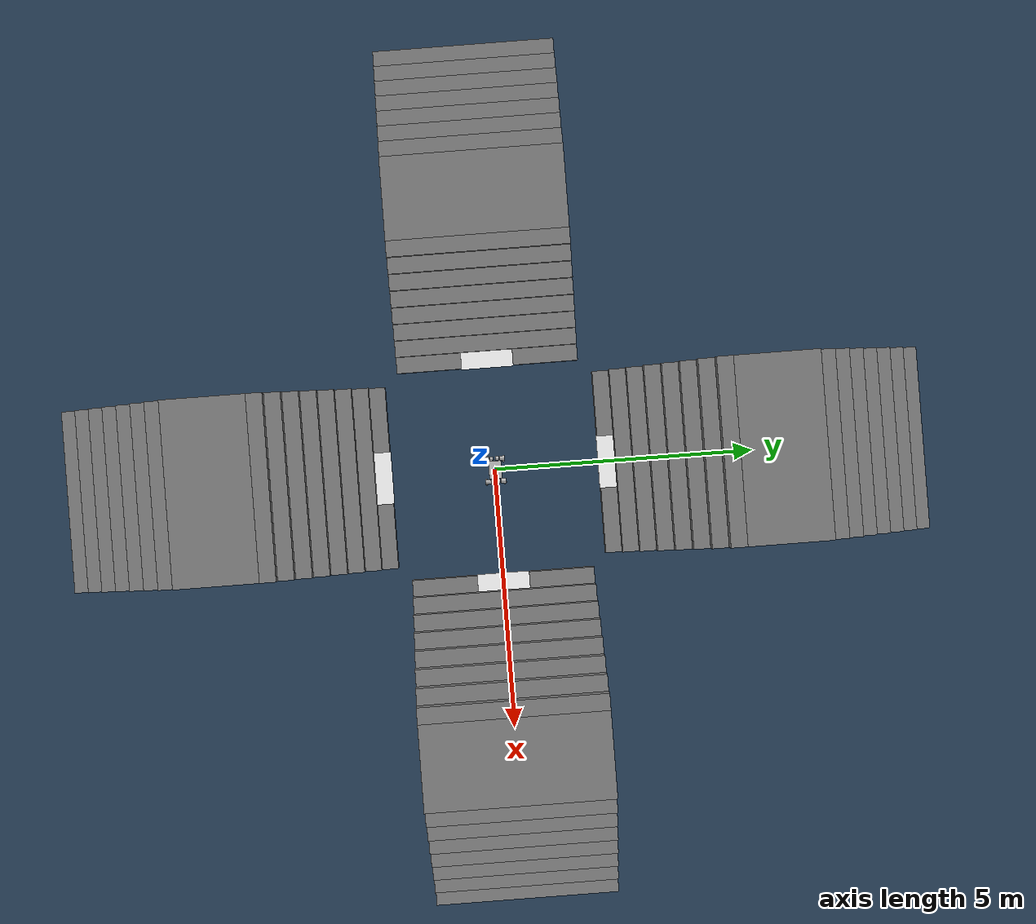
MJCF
<mujoco model="cross_stairs_1_4_7_10">
  <include file="z2.xml"/>
  <!-- Terrain Type: cross_stairs, Level: 1_4_7_10, Cross Layout: Center Gap 2.0m. Arch step height: 0.0800 Arch step height: 0.2000 Arch step height: 0.2300 Arch step height: 0.1700 -->
  <statistic center="0 0 0.1" extent="0.8" />
  <visual>
    <headlight diffuse="0.6 0.6 0.6" ambient="0.3 0.3 0.3" specular="0 0 0" />
    <rgba haze="0.15 0.25 0.35 1" />
    <global azimuth="-130" elevation="-20" />
  </visual>
  <asset>
    <texture type="skybox" builtin="gradient" rgb1="0.3 0.5 0.7" rgb2="0 0 0" width="512" height="3072" />
    <texture type="2d" name="groundplane" builtin="checker" mark="edge" rgb1="0.2 0.3 0.4" rgb2="0.1 0.2 0.3" markrgb="0.8 0.8 0.8" width="300" height="300" />
    <material name="groundplane" texture="groundplane" texuniform="true" texrepeat="5 5" reflectance="0.0" />
    <texture name="tex_label_1" type="2d" file="../imgs/label_1.png" />
    <material name="mat_label_1" texture="tex_label_1" specular="0" shininess="0" emission="1" texrepeat="1 -1" rgba="1 1 1 1" />
    <texture name="tex_label_7" type="2d" file="../imgs/label_7.png" />
    <material name="mat_label_7" texture="tex_label_7" specular="0" shininess="0" emission="1" texrepeat="1 -1" rgba="1 1 1 1" />
    <texture name="tex_label_10" type="2d" file="../imgs/label_10.png" />
    <material name="mat_label_10" texture="tex_label_10" specular="0" shininess="0" emission="1" texrepeat="1 -1" rgba="1 1 1 1" />
    <texture name="tex_label_4" type="2d" file="../imgs/label_4.png" />
    <material name="mat_label_4" texture="tex_label_4" specular="0" shininess="0" emission="1" texrepeat="1 -1" rgba="1 1 1 1" />
  </asset>
  <worldbody>
    <light pos="0 0 1.5" dir="0 0 -1" directional="true" />
    <geom name="floor" size="0 0 0.05" type="plane" material="groundplane" />
    <geom pos="-2.155 1.8982025386783976e-17 0.04" type="box" size="0.155 1.75 0.04" quat="6.123233995736766e-17 0.0 0.0 1.0" />
    <geom pos="-2.465 5.694607616035192e-17 0.12" type="box" size="0.155 1.75 0.04" quat="6.123233995736766e-17 0.0 0.0 1.0" />
    <geom pos="-2.775 9.491012693391986e-17 0.2" type="box" size="0.155 1.75 0.04" quat="6.123233995736766e-17 0.0 0.0 1.0" />
    <geom pos="-3.085 1.328741777074878e-16 0.28" type="box" size="0.155 1.75 0.04" quat="6.123233995736766e-17 0.0 0.0 1.0" />
    <geom pos="-3.395 1.7083822848105578e-16 0.36000000000000004" type="box" size="0.155 1.75 0.04" quat="6.123233995736766e-17 0.0 0.0 1.0" />
    <geom pos="-3.705 2.0880227925462374e-16 0.44000000000000006" type="box" size="0.155 1.75 0.04" quat="6.123233995736766e-17 0.0 0.0 1.0" />
    <geom pos="-4.015000000000001 2.467663300281917e-16 0.52" type="box" size="0.155 1.75 0.04" quat="6.123233995736766e-17 0.0 0.0 1.0" />
    <geom pos="-4.325 2.8473038080175964e-16 0.6" type="box" size="0.155 1.75 0.04" quat="6.123233995736766e-17 0.0 0.0 1.0" />
    <geom pos="-5.28 4.016841501203319e-16 0.6" type="box" size="0.8 1.75 0.04" quat="6.123233995736766e-17 0.0 0.0 1.0" />
    <geom pos="-6.235 5.186379194389041e-16 0.52" type="box" size="0.155 1.75 0.04" quat="6.123233995736766e-17 0.0 0.0 1.0" />
    <geom pos="-6.545 5.56601970212472e-16 0.44" type="box" size="0.155 1.75 0.04" quat="6.123233995736766e-17 0.0 0.0 1.0" />
    <geom pos="-6.8549999999999995 5.945660209860399e-16 0.36" type="box" size="0.155 1.75 0.04" quat="6.123233995736766e-17 0.0 0.0 1.0" />
    <geom pos="-7.164999999999999 6.325300717596078e-16 0.27999999999999997" type="box" size="0.155 1.75 0.04" quat="6.123233995736766e-17 0.0 0.0 1.0" />
    <geom pos="-7.474999999999999 6.704941225331758e-16 0.19999999999999996" type="box" size="0.155 1.75 0.04" quat="6.123233995736766e-17 0.0 0.0 1.0" />
    <geom pos="-7.784999999999998 7.084581733067436e-16 0.11999999999999995" type="box" size="0.155 1.75 0.04" quat="6.123233995736766e-17 0.0 0.0 1.0" />
    <geom pos="-8.094999999999999 7.464222240803115e-16 0.03999999999999995" type="box" size="0.155 1.75 0.04" quat="6.123233995736766e-17 0.0 0.0 1.0" />
    <geom pos="-2.155 1.8982025386783976e-17 0.082" type="box" size="0.5 0.17532467532467533 0.0001" quat="0.7071067811865476 0.0 0.0 0.7071067811865476" contype="0" conaffinity="0" group="1" material="mat_label_1" rgba="1 1 1 1" />
    <geom pos="9.491012693391988e-18 2.155 0.1" type="box" size="0.155 1.75 0.1" quat="0.7071067811865476 0.0 0.0 0.7071067811865476" />
    <geom pos="2.847303808017596e-17 2.465 0.30000000000000004" type="box" size="0.155 1.75 0.1" quat="0.7071067811865476 0.0 0.0 0.7071067811865476" />
    <geom pos="4.745506346695993e-17 2.775 0.5" type="box" size="0.155 1.75 0.1" quat="0.7071067811865476 0.0 0.0 0.7071067811865476" />
    <geom pos="6.64370888537439e-17 3.085 0.7" type="box" size="0.155 1.75 0.1" quat="0.7071067811865476 0.0 0.0 0.7071067811865476" />
    <geom pos="8.541911424052789e-17 3.395 0.8999999999999999" type="box" size="0.155 1.75 0.1" quat="0.7071067811865476 0.0 0.0 0.7071067811865476" />
    <geom pos="1.0440113962731187e-16 3.705 1.0999999999999999" type="box" size="0.155 1.75 0.1" quat="0.7071067811865476 0.0 0.0 0.7071067811865476" />
    <geom pos="1.2338316501409585e-16 4.015000000000001 1.2999999999999998" type="box" size="0.155 1.75 0.1" quat="0.7071067811865476 0.0 0.0 0.7071067811865476" />
    <geom pos="1.4236519040087982e-16 4.325 1.4999999999999998" type="box" size="0.155 1.75 0.1" quat="0.7071067811865476 0.0 0.0 0.7071067811865476" />
    <geom pos="2.0084207506016595e-16 5.28 1.4999999999999998" type="box" size="0.8 1.75 0.1" quat="0.7071067811865476 0.0 0.0 0.7071067811865476" />
    <geom pos="2.5931895971945205e-16 6.235 1.2999999999999998" type="box" size="0.155 1.75 0.1" quat="0.7071067811865476 0.0 0.0 0.7071067811865476" />
    <geom pos="2.78300985106236e-16 6.545 1.0999999999999999" type="box" size="0.155 1.75 0.1" quat="0.7071067811865476 0.0 0.0 0.7071067811865476" />
    <geom pos="2.9728301049301994e-16 6.8549999999999995 0.8999999999999999" type="box" size="0.155 1.75 0.1" quat="0.7071067811865476 0.0 0.0 0.7071067811865476" />
    <geom pos="3.162650358798039e-16 7.164999999999999 0.7" type="box" size="0.155 1.75 0.1" quat="0.7071067811865476 0.0 0.0 0.7071067811865476" />
    <geom pos="3.352470612665879e-16 7.474999999999999 0.49999999999999994" type="box" size="0.155 1.75 0.1" quat="0.7071067811865476 0.0 0.0 0.7071067811865476" />
    <geom pos="3.542290866533718e-16 7.784999999999998 0.29999999999999993" type="box" size="0.155 1.75 0.1" quat="0.7071067811865476 0.0 0.0 0.7071067811865476" />
    <geom pos="3.7321111204015577e-16 8.094999999999999 0.09999999999999992" type="box" size="0.155 1.75 0.1" quat="0.7071067811865476 0.0 0.0 0.7071067811865476" />
    <geom pos="9.491012693391988e-18 2.155 0.202" type="box" size="0.5 0.17532467532467533 0.0001" quat="1.0 0.0 0.0 0.0" contype="0" conaffinity="0" group="1" material="mat_label_7" rgba="1 1 1 1" />
    <geom pos="2.155 0.0 0.115" type="box" size="0.155 1.75 0.115" quat="1.0 0.0 0.0 0.0" />
    <geom pos="2.465 0.0 0.34500000000000003" type="box" size="0.155 1.75 0.115" quat="1.0 0.0 0.0 0.0" />
    <geom pos="2.775 0.0 0.5750000000000001" type="box" size="0.155 1.75 0.115" quat="1.0 0.0 0.0 0.0" />
    <geom pos="3.085 0.0 0.805" type="box" size="0.155 1.75 0.115" quat="1.0 0.0 0.0 0.0" />
    <geom pos="3.395 0.0 1.0350000000000001" type="box" size="0.155 1.75 0.115" quat="1.0 0.0 0.0 0.0" />
    <geom pos="3.705 0.0 1.2650000000000001" type="box" size="0.155 1.75 0.115" quat="1.0 0.0 0.0 0.0" />
    <geom pos="4.015000000000001 0.0 1.495" type="box" size="0.155 1.75 0.115" quat="1.0 0.0 0.0 0.0" />
    <geom pos="4.325 0.0 1.725" type="box" size="0.155 1.75 0.115" quat="1.0 0.0 0.0 0.0" />
    <geom pos="5.28 0.0 1.725" type="box" size="0.8 1.75 0.115" quat="1.0 0.0 0.0 0.0" />
    <geom pos="6.235 0.0 1.495" type="box" size="0.155 1.75 0.115" quat="1.0 0.0 0.0 0.0" />
    <geom pos="6.545 0.0 1.2650000000000001" type="box" size="0.155 1.75 0.115" quat="1.0 0.0 0.0 0.0" />
    <geom pos="6.8549999999999995 0.0 1.0350000000000001" type="box" size="0.155 1.75 0.115" quat="1.0 0.0 0.0 0.0" />
    <geom pos="7.164999999999999 0.0 0.8050000000000002" type="box" size="0.155 1.75 0.115" quat="1.0 0.0 0.0 0.0" />
    <geom pos="7.474999999999999 0.0 0.5750000000000002" type="box" size="0.155 1.75 0.115" quat="1.0 0.0 0.0 0.0" />
    <geom pos="7.784999999999998 0.0 0.3450000000000002" type="box" size="0.155 1.75 0.115" quat="1.0 0.0 0.0 0.0" />
    <geom pos="8.094999999999999 0.0 0.11500000000000019" type="box" size="0.155 1.75 0.115" quat="1.0 0.0 0.0 0.0" />
    <geom pos="2.155 0.0 0.232" type="box" size="0.5 0.17532467532467533 0.0001" quat="0.7071067811865476 0.0 0.0 -0.7071067811865476" contype="0" conaffinity="0" group="1" material="mat_label_10" rgba="1 1 1 1" />
    <geom pos="9.491012693391988e-18 -2.155 0.08499999999999999" type="box" size="0.155 1.75 0.08499999999999999" quat="0.7071067811865476 0.0 0.0 -0.7071067811865476" />
    <geom pos="2.847303808017596e-17 -2.465 0.255" type="box" size="0.155 1.75 0.08499999999999999" quat="0.7071067811865476 0.0 0.0 -0.7071067811865476" />
    <geom pos="4.745506346695993e-17 -2.775 0.425" type="box" size="0.155 1.75 0.08499999999999999" quat="0.7071067811865476 0.0 0.0 -0.7071067811865476" />
    <geom pos="6.64370888537439e-17 -3.085 0.595" type="box" size="0.155 1.75 0.08499999999999999" quat="0.7071067811865476 0.0 0.0 -0.7071067811865476" />
    <geom pos="8.541911424052789e-17 -3.395 0.7649999999999999" type="box" size="0.155 1.75 0.08499999999999999" quat="0.7071067811865476 0.0 0.0 -0.7071067811865476" />
    <geom pos="1.0440113962731187e-16 -3.705 0.9349999999999998" type="box" size="0.155 1.75 0.08499999999999999" quat="0.7071067811865476 0.0 0.0 -0.7071067811865476" />
    <geom pos="1.2338316501409585e-16 -4.015000000000001 1.1049999999999998" type="box" size="0.155 1.75 0.08499999999999999" quat="0.7071067811865476 0.0 0.0 -0.7071067811865476" />
    <geom pos="1.4236519040087982e-16 -4.325 1.2749999999999997" type="box" size="0.155 1.75 0.08499999999999999" quat="0.7071067811865476 0.0 0.0 -0.7071067811865476" />
    <geom pos="2.0084207506016595e-16 -5.28 1.2749999999999997" type="box" size="0.8 1.75 0.08499999999999999" quat="0.7071067811865476 0.0 0.0 -0.7071067811865476" />
    <geom pos="2.5931895971945205e-16 -6.235 1.1049999999999998" type="box" size="0.155 1.75 0.08499999999999999" quat="0.7071067811865476 0.0 0.0 -0.7071067811865476" />
    <geom pos="2.78300985106236e-16 -6.545 0.9349999999999998" type="box" size="0.155 1.75 0.08499999999999999" quat="0.7071067811865476 0.0 0.0 -0.7071067811865476" />
    <geom pos="2.9728301049301994e-16 -6.8549999999999995 0.7649999999999999" type="box" size="0.155 1.75 0.08499999999999999" quat="0.7071067811865476 0.0 0.0 -0.7071067811865476" />
    <geom pos="3.162650358798039e-16 -7.164999999999999 0.595" type="box" size="0.155 1.75 0.08499999999999999" quat="0.7071067811865476 0.0 0.0 -0.7071067811865476" />
    <geom pos="3.352470612665879e-16 -7.474999999999999 0.425" type="box" size="0.155 1.75 0.08499999999999999" quat="0.7071067811865476 0.0 0.0 -0.7071067811865476" />
    <geom pos="3.542290866533718e-16 -7.784999999999998 0.255" type="box" size="0.155 1.75 0.08499999999999999" quat="0.7071067811865476 0.0 0.0 -0.7071067811865476" />
    <geom pos="3.7321111204015577e-16 -8.094999999999999 0.08500000000000002" type="box" size="0.155 1.75 0.08499999999999999" quat="0.7071067811865476 0.0 0.0 -0.7071067811865476" />
    <geom pos="9.491012693391988e-18 -2.155 0.172" type="box" size="0.5 0.17532467532467533 0.0001" quat="6.123233995736766e-17 0.0 0.0 -1.0" contype="0" conaffinity="0" group="1" material="mat_label_4" rgba="1 1 1 1" />
  </worldbody>
</mujoco>

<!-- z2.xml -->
<mujoco model="z2">
  <compiler angle="radian"/>
    <!-- 优化的仿真参数 -->
  <option timestep="0.005" iterations="50" solver="Newton" tolerance="1e-10"/>

  <!-- 默认参数设置 -->
  <default>
    <joint damping="0.1" frictionloss="0.01"/>
  </default>

  <!-- 资源 -->
  <asset>
    <texture name="grid" type="2d" builtin="checker" rgb1=".1 .2 .3" rgb2=".2 .3 .4" width="300" height="300"/>
    <material name="grid" texture="grid" texrepeat="8 8" reflectance=".2"/>
  </asset>
  <worldbody>
    <body name = "base" pos="0 0 0.45">
      <freejoint name="floating_base"/>
      <camera name="chase_cam" pos="-2 0 2" xyaxes="0 -1 0 1 0 1"/>
      <inertial pos="-0.000191 0.0000032 0.0006968" mass="5.58" diaginertia="0.037965 0.083111 0.107543"/>

    <geom size="0.171 0.1185 0.0434996" pos="-0.0002 0 0.0006991" type="box" rgba="0.749024 0.749024 0.749024 1"/>
    <body name="FL_hip" pos="0.16 0.075 0">
      <inertial pos="0.0503824 -0.0220598 -0.0002227" quat="0.613622 0.651852 0.303579 0.326185" mass="0.6" diaginertia="0.000667996 0.000641103 0.000488901"/>
      <joint name="FL_hip_joint" pos="0 0 0" axis="1 0 0" range="-0.5 0.5" actuatorfrcrange="-30 30"/>
      <geom size="0.0366 0.0334" pos="0.057684 -0.0226742 0.0010791" quat="0.707107 0.707107 0 0" type="cylinder" rgba="0.749024 0.749024 0.749024 1"/>
      <body name="FL_thigh" pos="0.055 0.0842 0">
        <inertial pos="-0.007049 0.002918 -0.050395" quat="0.991716 0.113446 0.0581557 -0.0157265" mass="0.955" diaginertia="0.0049174 0.00470044 0.000998163"/>
        <joint name="FL_thigh_joint" pos="0 0 0" axis="0 1 0" range="-0.3 3.2" actuatorfrcrange="-30 30"/>
        <geom size="0.0422 0.05025" pos="0 -0.012625 0" quat="0.707107 0.707107 0 0" type="cylinder" rgba="0.749024 0.749024 0.749024 1"/>
        <geom size="0.025 0.015 0.095" pos="-0.011032 0.0188 -0.077453" quat="0.997189 0 0.0749297 0" type="box" rgba="0.749024 0.749024 0.749024 1"/>
        <body name="FL_calf" pos="0 0.01475 -0.2">
          <inertial pos="0.030631 0.00010936 -0.106785" quat="0.710916 -0.0753843 -0.0782397 0.694834" mass="0.2" diaginertia="0.00139287 0.00137355 3.83019e-05"/>
          <joint name="FL_calf_joint" pos="0 0 0" axis="0 1 0" range="-2.4 -0.3" actuatorfrcrange="-30 30"/>
          <geom size="0.12015 0.02 0.015" pos="0.022557 -0.0008348 -0.072349" quat="0.784565 0 0.620047 0" type="box" rgba="0.749024 0.749024 0.749024 1"/>
          <geom size="0.026" pos="0.0450757 5e-05 -0.204592" rgba="0.749024 0.749024 0.749024 1"/>
        </body>
      </body>
    </body>
    <body name="FR_hip" pos="0.16 -0.075 0">
      <inertial pos="0.0506296 0.0221701 -0.000239" quat="0.326185 0.303579 0.651852 0.613622" mass="0.6" diaginertia="0.000667996 0.000641103 0.000488901"/>
      <joint name="FR_hip_joint" pos="0 0 0" axis="1 0 0" range="-0.5 0.5" actuatorfrcrange="-30 30"/>
      <geom size="0.0366 0.0334" pos="0.057684 0.0226742 0.0010791" quat="0.707107 0.707107 0 0" type="cylinder" rgba="0.749024 0.749024 0.749024 1"/>
      <body name="FR_thigh" pos="0.055 -0.084 0">
        <inertial pos="-0.007071 -0.003119 -0.050404" quat="0.991691 -0.113365 0.0582242 0.0175184" mass="0.955" diaginertia="0.00491621 0.00469942 0.000998366"/>
        <joint name="FR_thigh_joint" pos="0 0 0" axis="0 1 0" range="-0.3 3.2" actuatorfrcrange="-30 30"/>
        <geom size="0.0422 0.05025" pos="0 0.012625 0" quat="0.707107 0.707107 0 0" type="cylinder" rgba="0.749024 0.749024 0.749024 1"/>
        <geom size="0.025 0.015 0.095" pos="-0.011032 -0.0188 -0.077453" quat="0.997189 0 0.0749297 0" type="box" rgba="0.749024 0.749024 0.749024 1"/>
        <body name="FR_calf" pos="0 -0.01495 -0.2">
          <inertial pos="0.0331811 -0.00010945 -0.106021" quat="0.710958 -0.0847404 -0.0857223 0.692828" mass="0.2" diaginertia="0.00139287 0.00137417 3.86716e-05"/>
          <joint name="FR_calf_joint" pos="0 0 0" axis="0 1 0" range="-2.4 -0.3" actuatorfrcrange="-30 30"/>
          <geom size="0.12015 0.02 0.015" pos="0.022557 0.0008348 -0.072349" quat="0.784565 0 0.620047 0" type="box" rgba="0.749024 0.749024 0.749024 1"/>
          <geom size="0.026" pos="0.0499806 -5e-05 -0.203453" rgba="0.749024 0.749024 0.749024 1"/>
        </body>
      </body>
    </body>
    <body name="RL_hip" pos="-0.16 0.075 0.0006991">
      <inertial pos="-0.0506619 -0.0222818 -0.0002469" quat="0.303583 0.327127 0.613027 0.651939" mass="0.6" diaginertia="0.000667037 0.000641102 0.000489861"/>
      <joint name="RL_hip_joint" pos="0 0 0" axis="1 0 0" range="-0.5 0.5" actuatorfrcrange="-30 30"/>
      <geom size="0.0366 0.0334" pos="-0.057684 -0.0226742 0.0010791" quat="0.707107 0.707107 0 0" type="cylinder" rgba="0.749024 0.749024 0.749024 1"/>
      <body name="RL_thigh" pos="-0.0556459 0.084 -0.0002675">
        <inertial pos="-0.007049 0.003118 -0.050395" quat="0.991716 0.113446 0.0581557 -0.0157265" mass="0.955" diaginertia="0.0049174 0.00470044 0.000998163"/>
        <joint name="RL_thigh_joint" pos="0 0 0" axis="0 1 0" range="-0.3 3.2" actuatorfrcrange="-30 30"/>
        <geom size="0.0422 0.05025" pos="0 -0.012625 0" quat="0.707107 0.707107 0 0" type="cylinder" rgba="0.749024 0.749024 0.749024 1"/>
        <geom size="0.025 0.015 0.095" pos="-0.011032 0.0188 -0.077453" quat="0.997189 0 0.0749297 0" type="box" rgba="0.749024 0.749024 0.749024 1"/>
        <body name="RL_calf" pos="0 0.01495 -0.2">
          <inertial pos="0.030631 0.00010936 -0.106785" quat="0.710916 -0.0753843 -0.0782397 0.694834" mass="0.2" diaginertia="0.00139287 0.00137355 3.83019e-05"/>
          <joint name="RL_calf_joint" pos="0 0 0" axis="0 1 0" range="-2.4 -0.3" actuatorfrcrange="-30 30"/>
          <geom size="0.12015 0.02 0.015" pos="0.022557 -0.0008348 -0.072349" quat="0.784565 0 0.620047 0" type="box" rgba="0.749024 0.749024 0.749024 1"/>
          <geom size="0.026" pos="0.0450757 5e-05 -0.204592" rgba="0.749024 0.749024 0.749024 1"/>
        </body>
      </body>
    </body>
    <body name="RR_hip" pos="-0.16 -0.075 0">
      <inertial pos="-0.0506297 0.0221701 -0.0002391" quat="0.651852 0.613622 0.326185 0.303579" mass="0.6" diaginertia="0.000667996 0.000641103 0.000488901"/>
      <joint name="RR_hip_joint" pos="0 0 0" axis="1 0 0" range="-0.5 0.5" actuatorfrcrange="-30 30"/>
      <geom size="0.0366 0.0334" pos="-0.057684 0.0226742 0.0010791" quat="0.707107 0.707107 0 0" type="cylinder" rgba="0.749024 0.749024 0.749024 1"/>
      <body name="RR_thigh" pos="-0.055 -0.0842 0">
        <inertial pos="-0.006854 -0.003352 -0.049844" quat="0.992343 -0.108847 0.0563863 0.0150982" mass="0.955" diaginertia="0.00486431 0.00464503 0.000972667"/>
        <joint name="RR_thigh_joint" pos="0 0 0" axis="0 1 0" range="-0.3 3.2" actuatorfrcrange="-30 30"/>
        <geom size="0.0422 0.05025" pos="0 0.012625 0" quat="0.707107 0.707107 0 0" type="cylinder" rgba="0.749024 0.749024 0.749024 1"/>
        <geom size="0.025 0.015 0.095" pos="-0.011032 -0.0188 -0.077453" quat="0.997189 0 0.0749297 0" type="box" rgba="0.749024 0.749024 0.749024 1"/>
        <body name="RR_calf" pos="0 -0.01475 -0.2">
          <inertial pos="0.0331812 -0.00010941 -0.106021" quat="0.710959 -0.08474 -0.0857227 0.692826" mass="0.2" diaginertia="0.00139287 0.00137417 3.86716e-05"/>
          <joint name="RR_calf_joint" pos="0 0 0" axis="0 1 0" range="-2.4 -0.3" actuatorfrcrange="-30 30"/>
          <geom size="0.12015 0.02 0.015" pos="0.022557 0.0008348 -0.072349" quat="0.784565 0 0.620047 0" type="box" rgba="0.749024 0.749024 0.749024 1"/>
          <geom size="0.026" pos="0.0499806 -5e-05 -0.203453" rgba="0.749024 0.749024 0.749024 1"/>
        </body>
      </body>
    </body>
    </body>
  </worldbody>
    <!-- 电机驱动器 -->
  <actuator>
    <!-- 前左腿电机 -->
    <motor name="FL_hip_motor" joint="FL_hip_joint" gear="1"/>
    <motor name="FL_thigh_motor" joint="FL_thigh_joint" gear="1"/>
    <motor name="FL_calf_motor" joint="FL_calf_joint" gear="1"/>

    <!-- 后左腿电机 -->
    <motor name="RL_hip_motor" joint="RL_hip_joint" gear="1"/>
    <motor name="RL_thigh_motor" joint="RL_thigh_joint" gear="1"/>
    <motor name="RL_calf_motor" joint="RL_calf_joint" gear="1"/>

    <!-- 前右腿电机 -->
    <motor name="FR_hip_motor" joint="FR_hip_joint" gear="1"/>
    <motor name="FR_thigh_motor" joint="FR_thigh_joint" gear="1"/>
    <motor name="FR_calf_motor" joint="FR_calf_joint" gear="1"/>

    <!-- 后右腿电机 -->
    <motor name="RR_hip_motor" joint="RR_hip_joint" gear="1"/>
    <motor name="RR_thigh_motor" joint="RR_thigh_joint" gear="1"/>
    <motor name="RR_calf_motor" joint="RR_calf_joint" gear="1"/>
  </actuator>

</mujoco>
